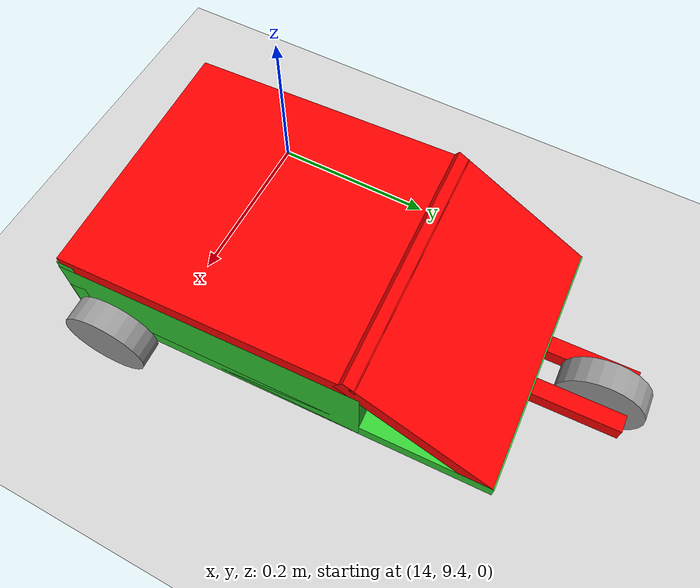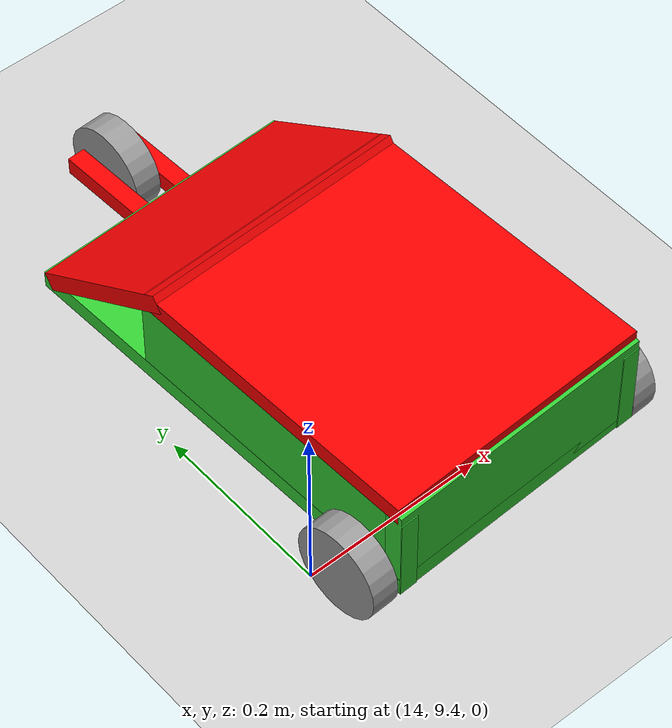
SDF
<sdf version="1.6">
 <world name="default">
  <model name="ground_plane">
   <static>1</static>
   <link name="link">
    <collision name="collision">
     <geometry><plane><normal>0 0 1</normal><size>100 100</size></plane></geometry>
     <surface><friction><ode><mu>100</mu><mu2>50</mu2></ode></friction></surface>
    </collision>
    <visual name="visual">
     <cast_shadows>0</cast_shadows>
     <geometry><plane><normal>0 0 1</normal><size>100 100</size></plane></geometry>
     <material>
      <script><uri>file://media/materials/scripts/gazebo.material</uri><name>Gazebo/Grey</name></script>
     </material>
    </visual>
   </link>
  </model>
  <model name="my_bot_2_0">
   <link name="link_12">
    <pose>-1e-06 0.16 0.055 1 -0 0</pose>
    <inertial>
     <mass>1</mass>
     <inertia>
      <ixx>0.166667</ixx>
      <ixy>0</ixy>
      <ixz>0</ixz>
      <iyy>0.166667</iyy>
      <iyz>0</iyz>
      <izz>0.166667</izz>
     </inertia>
    </inertial>
    <visual name="visual">
     <geometry><box><size>0.3 0.02 0.2</size></box></geometry>
     <material>
      <lighting>1</lighting>
      <script><uri>file://media/materials/scripts/gazebo.material</uri><name>Gazebo/Grey</name></script>
      <ambient>1 0 0 1</ambient>
      <diffuse>0.7 0.7 0.7 1</diffuse>
      <specular>0.01 0.01 0.01 1</specular>
      <emissive>0 0 0 1</emissive>
      <shader type="vertex"><normal_map>__default__</normal_map></shader>
     </material>
    </visual>
    <collision name="collision">
     <geometry><box><size>0.3 0.02 0.2</size></box></geometry>
     <surface>
      <friction>
       <ode><mu>1</mu><mu2>1</mu2><fdir1>0 0 0</fdir1><slip1>0</slip1><slip2>0</slip2></ode>
       <torsional>
        <coefficient>1</coefficient>
        <patch_radius>0</patch_radius>
        <surface_radius>0</surface_radius>
        <use_patch_radius>1</use_patch_radius>
        <ode><slip>0</slip></ode>
       </torsional>
      </friction>
      <bounce><restitution_coefficient>0</restitution_coefficient><threshold>1e+06</threshold></bounce>
      <contact>
       <collide_without_contact>0</collide_without_contact>
       <collide_without_contact_bitmask>1</collide_without_contact_bitmask>
       <collide_bitmask>1</collide_bitmask>
       <ode>
        <soft_cfm>0</soft_cfm>
        <soft_erp>0.2</soft_erp>
        <kp>1e+13</kp>
        <kd>1</kd>
        <max_vel>0.01</max_vel>
        <min_depth>0</min_depth>
       </ode>
       <bullet>
        <split_impulse>1</split_impulse>
        <split_impulse_penetration_threshold>-0.01</split_impulse_penetration_threshold>
        <soft_cfm>0</soft_cfm>
        <soft_erp>0.2</soft_erp>
        <kp>1e+13</kp>
        <kd>1</kd>
       </bullet>
      </contact>
     </surface>
    </collision>
   </link>
   <link name="link_5">
    <inertial>
     <mass>1</mass>
     <inertia>
      <ixx>0.166667</ixx>
      <ixy>0</ixy>
      <ixz>0</ixz>
      <iyy>0.166667</iyy>
      <iyz>0</iyz>
      <izz>0.166667</izz>
     </inertia>
    </inertial>
    <visual name="visual">
     <geometry><box><size>0.3 0.5 0.02</size></box></geometry>
     <material>
      <lighting>1</lighting>
      <script><uri>file://media/materials/scripts/gazebo.material</uri><name>Gazebo/Grey</name></script>
      <ambient>0.2 0.8 0.2 1</ambient>
      <diffuse>0.7 0.7 0.7 1</diffuse>
      <specular>0.01 0.01 0.01 1</specular>
      <emissive>0 0 0 1</emissive>
      <shader type="vertex"><normal_map>__default__</normal_map></shader>
     </material>
    </visual>
    <collision name="collision">
     <geometry><box><size>0.3 0.5 0.02</size></box></geometry>
     <surface>
      <friction>
       <ode><mu>1</mu><mu2>1</mu2><fdir1>0 0 0</fdir1><slip1>0</slip1><slip2>0</slip2></ode>
       <torsional>
        <coefficient>1</coefficient>
        <patch_radius>0</patch_radius>
        <surface_radius>0</surface_radius>
        <use_patch_radius>1</use_patch_radius>
        <ode><slip>0</slip></ode>
       </torsional>
      </friction>
      <bounce><restitution_coefficient>0</restitution_coefficient><threshold>1e+06</threshold></bounce>
      <contact>
       <collide_without_contact>0</collide_without_contact>
       <collide_without_contact_bitmask>1</collide_without_contact_bitmask>
       <collide_bitmask>1</collide_bitmask>
       <ode>
        <soft_cfm>0</soft_cfm>
        <soft_erp>0.2</soft_erp>
        <kp>1e+13</kp>
        <kd>1</kd>
        <max_vel>0.01</max_vel>
        <min_depth>0</min_depth>
       </ode>
       <bullet>
        <split_impulse>1</split_impulse>
        <split_impulse_penetration_threshold>-0.01</split_impulse_penetration_threshold>
        <soft_cfm>0</soft_cfm>
        <soft_erp>0.2</soft_erp>
        <kp>1e+13</kp>
        <kd>1</kd>
       </bullet>
      </contact>
     </surface>
    </collision>
   </link>
   <link name="link_5_clone">
    <pose>-0.139999 -0.076 0.04 3.12691 1.57079 3.12691</pose>
    <inertial>
     <mass>1</mass>
     <inertia>
      <ixx>0.166667</ixx>
      <ixy>0</ixy>
      <ixz>0</ixz>
      <iyy>0.166667</iyy>
      <iyz>0</iyz>
      <izz>0.166667</izz>
     </inertia>
    </inertial>
    <visual name="visual">
     <geometry><box><size>0.1 0.35 0.02</size></box></geometry>
     <material>
      <lighting>1</lighting>
      <script><uri>file://media/materials/scripts/gazebo.material</uri><name>Gazebo/Grey</name></script>
      <ambient>0.2 0.8 0.2 1</ambient>
      <diffuse>0.7 0.7 0.7 1</diffuse>
      <specular>0.01 0.01 0.01 1</specular>
      <emissive>0 0 0 1</emissive>
      <shader type="vertex"><normal_map>__default__</normal_map></shader>
     </material>
    </visual>
    <collision name="collision">
     <geometry><box><size>0.1 0.35 0.02</size></box></geometry>
     <surface>
      <friction>
       <ode><mu>1</mu><mu2>1</mu2><fdir1>0 0 0</fdir1><slip1>0</slip1><slip2>0</slip2></ode>
       <torsional>
        <coefficient>1</coefficient>
        <patch_radius>0</patch_radius>
        <surface_radius>0</surface_radius>
        <use_patch_radius>1</use_patch_radius>
        <ode><slip>0</slip></ode>
       </torsional>
      </friction>
      <bounce><restitution_coefficient>0</restitution_coefficient><threshold>1e+06</threshold></bounce>
      <contact>
       <collide_without_contact>0</collide_without_contact>
       <collide_without_contact_bitmask>1</collide_without_contact_bitmask>
       <collide_bitmask>1</collide_bitmask>
       <ode>
        <soft_cfm>0</soft_cfm>
        <soft_erp>0.2</soft_erp>
        <kp>1e+13</kp>
        <kd>1</kd>
        <max_vel>0.01</max_vel>
        <min_depth>0</min_depth>
       </ode>
       <bullet>
        <split_impulse>1</split_impulse>
        <split_impulse_penetration_threshold>-0.01</split_impulse_penetration_threshold>
        <soft_cfm>0</soft_cfm>
        <soft_erp>0.2</soft_erp>
        <kp>1e+13</kp>
        <kd>1</kd>
       </bullet>
      </contact>
     </surface>
    </collision>
   </link>
   <link name="link_5_clone_0">
    <pose>-1e-06 -0.076 0.1 0 -0 0</pose>
    <inertial>
     <mass>0.999845</mass>
     <inertia>
      <ixx>0.166615</ixx>
      <ixy>0</ixy>
      <ixz>0</ixz>
      <iyy>0.166641</iyy>
      <iyz>0</iyz>
      <izz>0.166615</izz>
     </inertia>
    </inertial>
    <visual name="visual">
     <geometry><box><size>0.3 0.339947 0.02</size></box></geometry>
     <material>
      <lighting>1</lighting>
      <script><uri>file://media/materials/scripts/gazebo.material</uri><name>Gazebo/Grey</name></script>
      <ambient>1 0 0 1</ambient>
      <diffuse>0.7 0.7 0.7 1</diffuse>
      <specular>0.01 0.01 0.01 1</specular>
      <emissive>0 0 0 1</emissive>
      <shader type="vertex"><normal_map>__default__</normal_map></shader>
     </material>
    </visual>
    <collision name="collision">
     <geometry><box><size>0.3 0.339947 0.02</size></box></geometry>
     <surface>
      <friction>
       <ode><mu>1</mu><mu2>1</mu2><fdir1>0 0 0</fdir1><slip1>0</slip1><slip2>0</slip2></ode>
       <torsional>
        <coefficient>1</coefficient>
        <patch_radius>0</patch_radius>
        <surface_radius>0</surface_radius>
        <use_patch_radius>1</use_patch_radius>
        <ode><slip>0</slip></ode>
       </torsional>
      </friction>
      <bounce><restitution_coefficient>0</restitution_coefficient><threshold>1e+06</threshold></bounce>
      <contact>
       <collide_without_contact>0</collide_without_contact>
       <collide_without_contact_bitmask>1</collide_without_contact_bitmask>
       <collide_bitmask>1</collide_bitmask>
       <ode>
        <soft_cfm>0</soft_cfm>
        <soft_erp>0.2</soft_erp>
        <kp>1e+13</kp>
        <kd>1</kd>
        <max_vel>0.01</max_vel>
        <min_depth>0</min_depth>
       </ode>
       <bullet>
        <split_impulse>1</split_impulse>
        <split_impulse_penetration_threshold>-0.01</split_impulse_penetration_threshold>
        <soft_cfm>0</soft_cfm>
        <soft_erp>0.2</soft_erp>
        <kp>1e+13</kp>
        <kd>1</kd>
       </bullet>
      </contact>
     </surface>
    </collision>
   </link>
   <link name="link_5_clone_clone">
    <pose>0.14 -0.076 0.04 3.12691 1.57079 3.12691</pose>
    <inertial>
     <mass>1</mass>
     <inertia>
      <ixx>0.166667</ixx>
      <ixy>0</ixy>
      <ixz>0</ixz>
      <iyy>0.166667</iyy>
      <iyz>0</iyz>
      <izz>0.166667</izz>
     </inertia>
    </inertial>
    <visual name="visual">
     <geometry><box><size>0.1 0.35 0.02</size></box></geometry>
     <material>
      <lighting>1</lighting>
      <script><uri>file://media/materials/scripts/gazebo.material</uri><name>Gazebo/Grey</name></script>
      <ambient>0.2 0.8 0.2 1</ambient>
      <diffuse>0.7 0.7 0.7 1</diffuse>
      <specular>0.01 0.01 0.01 1</specular>
      <emissive>0 0 0 1</emissive>
      <shader type="vertex"><normal_map>__default__</normal_map></shader>
     </material>
    </visual>
    <collision name="collision">
     <geometry><box><size>0.1 0.35 0.02</size></box></geometry>
     <surface>
      <friction>
       <ode><mu>1</mu><mu2>1</mu2><fdir1>0 0 0</fdir1><slip1>0</slip1><slip2>0</slip2></ode>
       <torsional>
        <coefficient>1</coefficient>
        <patch_radius>0</patch_radius>
        <surface_radius>0</surface_radius>
        <use_patch_radius>1</use_patch_radius>
        <ode><slip>0</slip></ode>
       </torsional>
      </friction>
      <bounce><restitution_coefficient>0</restitution_coefficient><threshold>1e+06</threshold></bounce>
      <contact>
       <collide_without_contact>0</collide_without_contact>
       <collide_without_contact_bitmask>1</collide_without_contact_bitmask>
       <collide_bitmask>1</collide_bitmask>
       <ode>
        <soft_cfm>0</soft_cfm>
        <soft_erp>0.2</soft_erp>
        <kp>1e+13</kp>
        <kd>1</kd>
        <max_vel>0.01</max_vel>
        <min_depth>0</min_depth>
       </ode>
       <bullet>
        <split_impulse>1</split_impulse>
        <split_impulse_penetration_threshold>-0.01</split_impulse_penetration_threshold>
        <soft_cfm>0</soft_cfm>
        <soft_erp>0.2</soft_erp>
        <kp>1e+13</kp>
        <kd>1</kd>
       </bullet>
      </contact>
     </surface>
    </collision>
   </link>
   <link name="link_5_clone_clone_clone">
    <pose>0 -0.239999 0.05 -1.53302 1.57079 0.037763</pose>
    <inertial>
     <mass>1</mass>
     <inertia>
      <ixx>0.166667</ixx>
      <ixy>0</ixy>
      <ixz>0</ixz>
      <iyy>0.166667</iyy>
      <iyz>0</iyz>
      <izz>0.166667</izz>
     </inertia>
     <pose>1.4 0.7 1 0 -0 0</pose>
    </inertial>
    <visual name="visual">
     <geometry><box><size>0.1 0.3 0.02</size></box></geometry>
     <material>
      <lighting>1</lighting>
      <script><uri>file://media/materials/scripts/gazebo.material</uri><name>Gazebo/Grey</name></script>
      <ambient>0.2 0.8 0.2 1</ambient>
      <diffuse>0.7 0.7 0.7 1</diffuse>
      <specular>0.01 0.01 0.01 1</specular>
      <emissive>0 0 0 1</emissive>
      <shader type="vertex"><normal_map>__default__</normal_map></shader>
     </material>
    </visual>
    <collision name="collision">
     <geometry><box><size>0.1 0.3 0.02</size></box></geometry>
     <surface>
      <friction>
       <ode><mu>1</mu><mu2>1</mu2><fdir1>0 0 0</fdir1><slip1>0</slip1><slip2>0</slip2></ode>
       <torsional>
        <coefficient>1</coefficient>
        <patch_radius>0</patch_radius>
        <surface_radius>0</surface_radius>
        <use_patch_radius>1</use_patch_radius>
        <ode><slip>0</slip></ode>
       </torsional>
      </friction>
      <bounce><restitution_coefficient>0</restitution_coefficient><threshold>1e+06</threshold></bounce>
      <contact>
       <collide_without_contact>0</collide_without_contact>
       <collide_without_contact_bitmask>1</collide_without_contact_bitmask>
       <collide_bitmask>1</collide_bitmask>
       <ode>
        <soft_cfm>0</soft_cfm>
        <soft_erp>0.2</soft_erp>
        <kp>1e+13</kp>
        <kd>1</kd>
        <max_vel>0.01</max_vel>
        <min_depth>0</min_depth>
       </ode>
       <bullet>
        <split_impulse>1</split_impulse>
        <split_impulse_penetration_threshold>-0.01</split_impulse_penetration_threshold>
        <soft_cfm>0</soft_cfm>
        <soft_erp>0.2</soft_erp>
        <kp>1e+13</kp>
        <kd>1</kd>
       </bullet>
      </contact>
     </surface>
    </collision>
   </link>
   <link name="link_6">
    <pose>-0.167 -0.2 -0 3.12691 1.57079 3.12691</pose>
    <inertial>
     <mass>1</mass>
     <inertia><ixx>0.145833</ixx><ixy>0</ixy><ixz>0</ixz><iyy>0.145833</iyy><iyz>0</iyz><izz>0.125</izz></inertia>
    </inertial>
    <visual name="visual">
     <geometry><cylinder><radius>0.05</radius><length>0.03</length></cylinder></geometry>
     <material>
      <lighting>1</lighting>
      <script><uri>file://media/materials/scripts/gazebo.material</uri><name>Gazebo/Grey</name></script>
      <ambient>0 0 0 1</ambient>
      <diffuse>0.7 0.7 0.7 1</diffuse>
      <specular>0.01 0.01 0.01 1</specular>
      <emissive>0 0 0 1</emissive>
      <shader type="vertex"><normal_map>__default__</normal_map></shader>
     </material>
    </visual>
    <collision name="collision">
     <geometry><cylinder><radius>0.05</radius><length>0.03</length></cylinder></geometry>
     <surface>
      <friction>
       <ode><mu>1</mu><mu2>1</mu2><fdir1>0 0 0</fdir1><slip1>0</slip1><slip2>0</slip2></ode>
       <torsional>
        <coefficient>1</coefficient>
        <patch_radius>0</patch_radius>
        <surface_radius>0</surface_radius>
        <use_patch_radius>1</use_patch_radius>
        <ode><slip>0</slip></ode>
       </torsional>
      </friction>
      <bounce><restitution_coefficient>0</restitution_coefficient><threshold>1e+06</threshold></bounce>
      <contact>
       <collide_without_contact>0</collide_without_contact>
       <collide_without_contact_bitmask>1</collide_without_contact_bitmask>
       <collide_bitmask>1</collide_bitmask>
       <ode>
        <soft_cfm>0</soft_cfm>
        <soft_erp>0.2</soft_erp>
        <kp>1e+13</kp>
        <kd>1</kd>
        <max_vel>0.01</max_vel>
        <min_depth>0</min_depth>
       </ode>
       <bullet>
        <split_impulse>1</split_impulse>
        <split_impulse_penetration_threshold>-0.01</split_impulse_penetration_threshold>
        <soft_cfm>0</soft_cfm>
        <soft_erp>0.2</soft_erp>
        <kp>1e+13</kp>
        <kd>1</kd>
       </bullet>
      </contact>
     </surface>
    </collision>
   </link>
   <link name="link_6_clone">
    <pose>0 0.32 0 3.08926 1.57079 3.08926</pose>
    <inertial>
     <mass>1</mass>
     <inertia><ixx>0.145833</ixx><ixy>0</ixy><ixz>0</ixz><iyy>0.145833</iyy><iyz>0</iyz><izz>0.125</izz></inertia>
    </inertial>
    <visual name="visual">
     <geometry><cylinder><radius>0.05</radius><length>0.03</length></cylinder></geometry>
     <material>
      <lighting>1</lighting>
      <script><uri>file://media/materials/scripts/gazebo.material</uri><name>Gazebo/Grey</name></script>
      <ambient>0 0 0 1</ambient>
      <diffuse>0.7 0.7 0.7 1</diffuse>
      <specular>0.01 0.01 0.01 1</specular>
      <emissive>0 0 0 1</emissive>
      <shader type="vertex"><normal_map>__default__</normal_map></shader>
     </material>
    </visual>
    <collision name="collision">
     <geometry><cylinder><radius>0.05</radius><length>0.03</length></cylinder></geometry>
     <surface>
      <friction>
       <ode><mu>1</mu><mu2>1</mu2><fdir1>0 0 0</fdir1><slip1>0</slip1><slip2>0</slip2></ode>
       <torsional>
        <coefficient>1</coefficient>
        <patch_radius>0</patch_radius>
        <surface_radius>0</surface_radius>
        <use_patch_radius>1</use_patch_radius>
        <ode><slip>0</slip></ode>
       </torsional>
      </friction>
      <bounce><restitution_coefficient>0</restitution_coefficient><threshold>1e+06</threshold></bounce>
      <contact>
       <collide_without_contact>0</collide_without_contact>
       <collide_without_contact_bitmask>1</collide_without_contact_bitmask>
       <collide_bitmask>1</collide_bitmask>
       <ode>
        <soft_cfm>0</soft_cfm>
        <soft_erp>0.2</soft_erp>
        <kp>1e+13</kp>
        <kd>1</kd>
        <max_vel>0.01</max_vel>
        <min_depth>0</min_depth>
       </ode>
       <bullet>
        <split_impulse>1</split_impulse>
        <split_impulse_penetration_threshold>-0.01</split_impulse_penetration_threshold>
        <soft_cfm>0</soft_cfm>
        <soft_erp>0.2</soft_erp>
        <kp>1e+13</kp>
        <kd>1</kd>
       </bullet>
      </contact>
     </surface>
    </collision>
   </link>
   <link name="link_6_clone_0">
    <pose>0.167001 -0.199998 -0 3.12691 1.57079 3.12691</pose>
    <inertial>
     <mass>1</mass>
     <inertia><ixx>0.145833</ixx><ixy>0</ixy><ixz>0</ixz><iyy>0.145833</iyy><iyz>0</iyz><izz>0.125</izz></inertia>
    </inertial>
    <visual name="visual">
     <geometry><cylinder><radius>0.05</radius><length>0.03</length></cylinder></geometry>
     <material>
      <lighting>1</lighting>
      <script><uri>file://media/materials/scripts/gazebo.material</uri><name>Gazebo/Grey</name></script>
      <ambient>0 0 0 1</ambient>
      <diffuse>0.7 0.7 0.7 1</diffuse>
      <specular>0.01 0.01 0.01 1</specular>
      <emissive>0 0 0 1</emissive>
      <shader type="vertex"><normal_map>__default__</normal_map></shader>
     </material>
    </visual>
    <collision name="collision">
     <geometry><cylinder><radius>0.05</radius><length>0.03</length></cylinder></geometry>
     <surface>
      <friction>
       <ode><mu>1</mu><mu2>1</mu2><fdir1>0 0 0</fdir1><slip1>0</slip1><slip2>0</slip2></ode>
       <torsional>
        <coefficient>1</coefficient>
        <patch_radius>0</patch_radius>
        <surface_radius>0</surface_radius>
        <use_patch_radius>1</use_patch_radius>
        <ode><slip>0</slip></ode>
       </torsional>
      </friction>
      <bounce><restitution_coefficient>0</restitution_coefficient><threshold>1e+06</threshold></bounce>
      <contact>
       <collide_without_contact>0</collide_without_contact>
       <collide_without_contact_bitmask>1</collide_without_contact_bitmask>
       <collide_bitmask>1</collide_bitmask>
       <ode>
        <soft_cfm>0</soft_cfm>
        <soft_erp>0.2</soft_erp>
        <kp>1e+13</kp>
        <kd>1</kd>
        <max_vel>0.01</max_vel>
        <min_depth>0</min_depth>
       </ode>
       <bullet>
        <split_impulse>1</split_impulse>
        <split_impulse_penetration_threshold>-0.01</split_impulse_penetration_threshold>
        <soft_cfm>0</soft_cfm>
        <soft_erp>0.2</soft_erp>
        <kp>1e+13</kp>
        <kd>1</kd>
       </bullet>
      </contact>
     </surface>
    </collision>
   </link>
   <link name="link_7">
    <pose>-0.026998 0.3 0 0 -0 0</pose>
    <inertial>
     <mass>1</mass>
     <inertia>
      <ixx>0.166667</ixx>
      <ixy>0</ixy>
      <ixz>0</ixz>
      <iyy>0.166667</iyy>
      <iyz>0</iyz>
      <izz>0.166667</izz>
     </inertia>
    </inertial>
    <visual name="visual">
     <geometry><box><size>0.02 0.1 0.02</size></box></geometry>
     <material>
      <lighting>1</lighting>
      <script><uri>file://media/materials/scripts/gazebo.material</uri><name>Gazebo/Grey</name></script>
      <ambient>1 0 0 1</ambient>
      <diffuse>0.7 0.7 0.7 1</diffuse>
      <specular>0.01 0.01 0.01 1</specular>
      <emissive>0 0 0 1</emissive>
      <shader type="vertex"><normal_map>__default__</normal_map></shader>
     </material>
    </visual>
    <collision name="collision">
     <geometry><box><size>0.02 0.1 0.02</size></box></geometry>
     <surface>
      <friction>
       <ode><mu>1</mu><mu2>1</mu2><fdir1>0 0 0</fdir1><slip1>0</slip1><slip2>0</slip2></ode>
       <torsional>
        <coefficient>1</coefficient>
        <patch_radius>0</patch_radius>
        <surface_radius>0</surface_radius>
        <use_patch_radius>1</use_patch_radius>
        <ode><slip>0</slip></ode>
       </torsional>
      </friction>
      <bounce><restitution_coefficient>0</restitution_coefficient><threshold>1e+06</threshold></bounce>
      <contact>
       <collide_without_contact>0</collide_without_contact>
       <collide_without_contact_bitmask>1</collide_without_contact_bitmask>
       <collide_bitmask>1</collide_bitmask>
       <ode>
        <soft_cfm>0</soft_cfm>
        <soft_erp>0.2</soft_erp>
        <kp>1e+13</kp>
        <kd>1</kd>
        <max_vel>0.01</max_vel>
        <min_depth>0</min_depth>
       </ode>
       <bullet>
        <split_impulse>1</split_impulse>
        <split_impulse_penetration_threshold>-0.01</split_impulse_penetration_threshold>
        <soft_cfm>0</soft_cfm>
        <soft_erp>0.2</soft_erp>
        <kp>1e+13</kp>
        <kd>1</kd>
       </bullet>
      </contact>
     </surface>
    </collision>
   </link>
   <link name="link_7_clone">
    <pose>0.027 0.3 -0 -3e-06 -2e-06 0.000736</pose>
    <inertial>
     <mass>1</mass>
     <inertia>
      <ixx>0.166667</ixx>
      <ixy>0</ixy>
      <ixz>0</ixz>
      <iyy>0.166667</iyy>
      <iyz>0</iyz>
      <izz>0.166667</izz>
     </inertia>
    </inertial>
    <visual name="visual">
     <geometry><box><size>0.02 0.1 0.02</size></box></geometry>
     <material>
      <lighting>1</lighting>
      <script><uri>file://media/materials/scripts/gazebo.material</uri><name>Gazebo/Grey</name></script>
      <ambient>1 0 0 1</ambient>
      <diffuse>0.7 0.7 0.7 1</diffuse>
      <specular>0.01 0.01 0.01 1</specular>
      <emissive>0 0 0 1</emissive>
      <shader type="vertex"><normal_map>__default__</normal_map></shader>
     </material>
    </visual>
    <collision name="collision">
     <geometry><box><size>0.02 0.1 0.02</size></box></geometry>
     <surface>
      <friction>
       <ode><mu>1</mu><mu2>1</mu2><fdir1>0 0 0</fdir1><slip1>0</slip1><slip2>0</slip2></ode>
       <torsional>
        <coefficient>1</coefficient>
        <patch_radius>0</patch_radius>
        <surface_radius>0</surface_radius>
        <use_patch_radius>1</use_patch_radius>
        <ode><slip>0</slip></ode>
       </torsional>
      </friction>
      <bounce><restitution_coefficient>0</restitution_coefficient><threshold>1e+06</threshold></bounce>
      <contact>
       <collide_without_contact>0</collide_without_contact>
       <collide_without_contact_bitmask>1</collide_without_contact_bitmask>
       <collide_bitmask>1</collide_bitmask>
       <ode>
        <soft_cfm>0</soft_cfm>
        <soft_erp>0.2</soft_erp>
        <kp>1e+13</kp>
        <kd>1</kd>
        <max_vel>0.01</max_vel>
        <min_depth>0</min_depth>
       </ode>
       <bullet>
        <split_impulse>1</split_impulse>
        <split_impulse_penetration_threshold>-0.01</split_impulse_penetration_threshold>
        <soft_cfm>0</soft_cfm>
        <soft_erp>0.2</soft_erp>
        <kp>1e+13</kp>
        <kd>1</kd>
       </bullet>
      </contact>
     </surface>
    </collision>
   </link>
   <joint name="link_5_JOINT_10" type="revolute">
    <parent>link_5</parent>
    <child>link_6</child>
    <axis>
     <xyz>0 0 1</xyz>
     <use_parent_model_frame>0</use_parent_model_frame>
     <limit>
      <lower>-1.79769e+308</lower>
      <upper>1.79769e+308</upper>
      <effort>-1</effort>
      <velocity>-1</velocity>
     </limit>
     <dynamics>
      <spring_reference>0</spring_reference>
      <spring_stiffness>0</spring_stiffness>
      <damping>0</damping>
      <friction>0</friction>
     </dynamics>
    </axis>
    <physics>
     <ode><limit><cfm>0</cfm><erp>0.2</erp></limit><suspension><cfm>0</cfm><erp>0.2</erp></suspension></ode>
    </physics>
   </joint>
   <joint name="link_5_JOINT_11" type="revolute">
    <parent>link_5</parent>
    <child>link_6_clone_0</child>
    <axis>
     <xyz>0 0 1</xyz>
     <use_parent_model_frame>0</use_parent_model_frame>
     <limit>
      <lower>-1.79769e+308</lower>
      <upper>1.79769e+308</upper>
      <effort>-1</effort>
      <velocity>-1</velocity>
     </limit>
     <dynamics>
      <spring_reference>0</spring_reference>
      <spring_stiffness>0</spring_stiffness>
      <damping>0</damping>
      <friction>0</friction>
     </dynamics>
    </axis>
    <physics>
     <ode><limit><cfm>0</cfm><erp>0.2</erp></limit><suspension><cfm>0</cfm><erp>0.2</erp></suspension></ode>
    </physics>
   </joint>
   <joint name="link_5_JOINT_2" type="fixed">
    <parent>link_5</parent>
    <child>link_7_clone</child>
    <physics>
     <ode><limit><cfm>0</cfm><erp>0.2</erp></limit><suspension><cfm>0</cfm><erp>0.2</erp></suspension></ode>
    </physics>
   </joint>
   <joint name="link_5_JOINT_3" type="fixed">
    <parent>link_5</parent>
    <child>link_7</child>
    <physics>
     <ode><limit><cfm>0</cfm><erp>0.2</erp></limit><suspension><cfm>0</cfm><erp>0.2</erp></suspension></ode>
    </physics>
   </joint>
   <joint name="link_5_JOINT_5" type="fixed">
    <parent>link_5</parent>
    <child>link_5_clone</child>
    <physics>
     <ode><limit><cfm>0</cfm><erp>0.2</erp></limit><suspension><cfm>0</cfm><erp>0.2</erp></suspension></ode>
    </physics>
   </joint>
   <joint name="link_5_JOINT_6" type="fixed">
    <parent>link_5</parent>
    <child>link_5_clone_0</child>
    <physics>
     <ode><limit><cfm>0</cfm><erp>0.2</erp></limit><suspension><cfm>0</cfm><erp>0.2</erp></suspension></ode>
    </physics>
   </joint>
   <joint name="link_5_JOINT_7" type="fixed">
    <parent>link_5</parent>
    <child>link_12</child>
    <physics>
     <ode><limit><cfm>0</cfm><erp>0.2</erp></limit><suspension><cfm>0</cfm><erp>0.2</erp></suspension></ode>
    </physics>
   </joint>
   <joint name="link_5_JOINT_8" type="fixed">
    <parent>link_5</parent>
    <child>link_5_clone_clone_clone</child>
    <physics>
     <ode><limit><cfm>0</cfm><erp>0.2</erp></limit><suspension><cfm>0</cfm><erp>0.2</erp></suspension></ode>
    </physics>
   </joint>
   <joint name="link_5_JOINT_9" type="fixed">
    <parent>link_5</parent>
    <child>link_5_clone_clone</child>
    <physics>
     <ode><limit><cfm>0</cfm><erp>0.2</erp></limit><suspension><cfm>0</cfm><erp>0.2</erp></suspension></ode>
    </physics>
   </joint>
   <joint name="link_7_JOINT_4" type="revolute">
    <parent>link_7</parent>
    <child>link_6_clone</child>
    <axis>
     <xyz>0 0 1</xyz>
     <use_parent_model_frame>0</use_parent_model_frame>
     <limit>
      <lower>-1.79769e+308</lower>
      <upper>1.79769e+308</upper>
      <effort>-1</effort>
      <velocity>-1</velocity>
     </limit>
     <dynamics>
      <spring_reference>0</spring_reference>
      <spring_stiffness>0</spring_stiffness>
      <damping>0</damping>
      <friction>0</friction>
     </dynamics>
    </axis>
    <physics>
     <ode><limit><cfm>0</cfm><erp>0.2</erp></limit><suspension><cfm>0</cfm><erp>0.2</erp></suspension></ode>
    </physics>
   </joint>
   <joint name="link_7_clone_JOINT_1" type="revolute">
    <parent>link_7_clone</parent>
    <child>link_6_clone</child>
    <axis>
     <xyz>0 0 1</xyz>
     <use_parent_model_frame>0</use_parent_model_frame>
     <limit>
      <lower>-1.79769e+308</lower>
      <upper>1.79769e+308</upper>
      <effort>-1</effort>
      <velocity>-1</velocity>
     </limit>
     <dynamics>
      <spring_reference>0</spring_reference>
      <spring_stiffness>0</spring_stiffness>
      <damping>0</damping>
      <friction>0</friction>
     </dynamics>
    </axis>
    <physics>
     <ode><limit><cfm>0</cfm><erp>0.2</erp></limit><suspension><cfm>0</cfm><erp>0.2</erp></suspension></ode>
    </physics>
   </joint>
   <static>0</static>
   <pose>14.1698 9.56689 0.050004 -1.4e-05 -3.3e-05 0.040306</pose>
  </model>
 </world>
</sdf>
